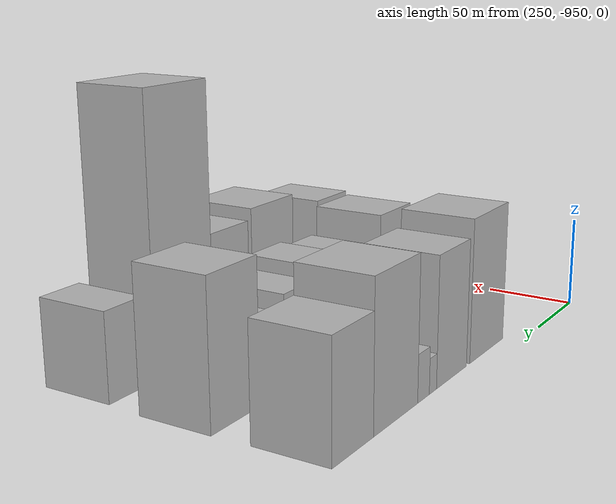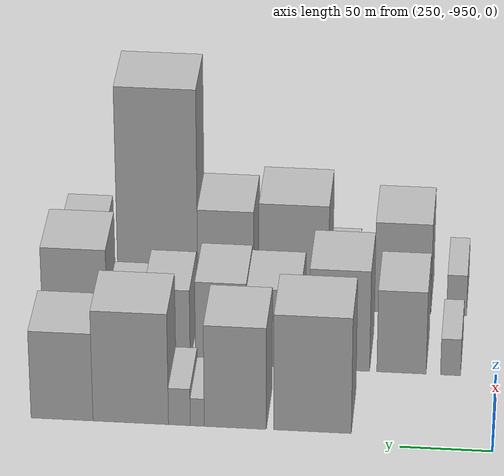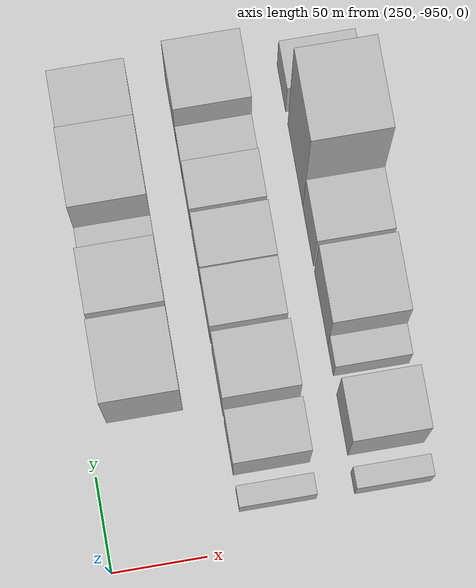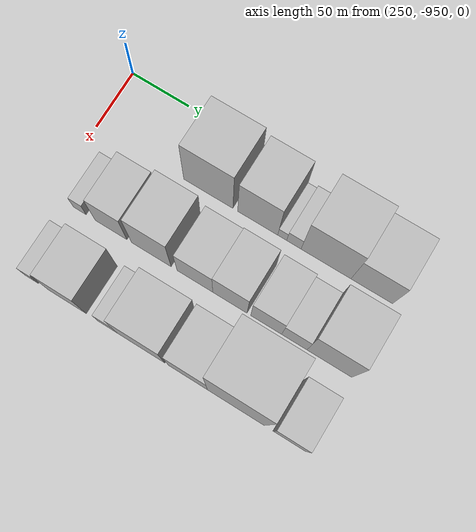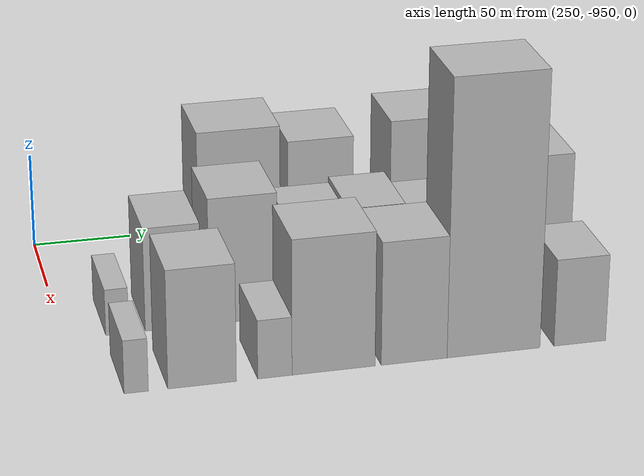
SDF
<sdf version="1.6">
 <world name="default">
  <model name="building_163">
   <static>1</static>
   <pose>280.0000 -852.0050 0 0.000000 0.000000 0.000000</pose>
   <link name="link">
    <pose>0 0 37.50 0 0 0</pose>
    <collision name="collision"><geometry><box><size>40.0000 42.2267 75.0000</size></box></geometry></collision>
    <visual name="visual">
     <cast_shadows>0</cast_shadows>
     <geometry><box><size>40.0000 42.2267 75.0000</size></box></geometry>
     <material>
      <script>
       <uri>model://HANNAS_wall/materials/scripts</uri>
       <uri>model://HANNAS_wall/materials/textures</uri>
       <name>vrc/HANNAS_wall</name>
      </script>
     </material>
    </visual>
   </link>
  </model>
  <model name="building_164">
   <static>1</static>
   <pose>280.0000 -809.9561 0 0.000000 0.000000 0.000000</pose>
   <link name="link">
    <pose>0 0 33.00 0 0 0</pose>
    <collision name="collision"><geometry><box><size>40.0000 33.8712 66.0000</size></box></geometry></collision>
    <visual name="visual">
     <cast_shadows>0</cast_shadows>
     <geometry><box><size>40.0000 33.8712 66.0000</size></box></geometry>
     <material>
      <script>
       <uri>model://HANNAS_wall/materials/scripts</uri>
       <uri>model://HANNAS_wall/materials/textures</uri>
       <name>vrc/HANNAS_wall</name>
      </script>
     </material>
    </visual>
   </link>
  </model>
  <model name="building_165">
   <static>1</static>
   <pose>280.0000 -789.2105 0 0.000000 0.000000 0.000000</pose>
   <link name="link">
    <pose>0 0 9.00 0 0 0</pose>
    <collision name="collision"><geometry><box><size>40.0000 7.6199 18.0000</size></box></geometry></collision>
    <visual name="visual">
     <cast_shadows>0</cast_shadows>
     <geometry><box><size>40.0000 7.6199 18.0000</size></box></geometry>
     <material>
      <script>
       <uri>model://HANNAS_wall/materials/scripts</uri>
       <uri>model://HANNAS_wall/materials/textures</uri>
       <name>vrc/HANNAS_wall</name>
      </script>
     </material>
    </visual>
   </link>
  </model>
  <model name="building_166">
   <static>1</static>
   <pose>280.0000 -779.4388 0 0.000000 0.000000 0.000000</pose>
   <link name="link">
    <pose>0 0 12.00 0 0 0</pose>
    <collision name="collision"><geometry><box><size>40.0000 11.9234 24.0000</size></box></geometry></collision>
    <visual name="visual">
     <cast_shadows>0</cast_shadows>
     <geometry><box><size>40.0000 11.9234 24.0000</size></box></geometry>
     <material>
      <script>
       <uri>model://HANNAS_wall/materials/scripts</uri>
       <uri>model://HANNAS_wall/materials/textures</uri>
       <name>vrc/HANNAS_wall</name>
      </script>
     </material>
    </visual>
   </link>
  </model>
  <model name="building_167">
   <static>1</static>
   <pose>280.0000 -752.8096 0 0.000000 0.000000 0.000000</pose>
   <link name="link">
    <pose>0 0 36.00 0 0 0</pose>
    <collision name="collision"><geometry><box><size>40.0000 41.3351 72.0000</size></box></geometry></collision>
    <visual name="visual">
     <cast_shadows>0</cast_shadows>
     <geometry><box><size>40.0000 41.3351 72.0000</size></box></geometry>
     <material>
      <script>
       <uri>model://HANNAS_wall/materials/scripts</uri>
       <uri>model://HANNAS_wall/materials/textures</uri>
       <name>vrc/HANNAS_wall</name>
      </script>
     </material>
    </visual>
   </link>
  </model>
  <model name="building_168">
   <static>1</static>
   <pose>280.0000 -715.1291 0 0.000000 0.000000 0.000000</pose>
   <link name="link">
    <pose>0 0 28.50 0 0 0</pose>
    <collision name="collision"><geometry><box><size>40.0000 34.0257 57.0000</size></box></geometry></collision>
    <visual name="visual">
     <cast_shadows>0</cast_shadows>
     <geometry><box><size>40.0000 34.0257 57.0000</size></box></geometry>
     <material>
      <script>
       <uri>model://HANNAS_wall/materials/scripts</uri>
       <uri>model://HANNAS_wall/materials/textures</uri>
       <name>vrc/HANNAS_wall</name>
      </script>
     </material>
    </visual>
   </link>
  </model>
  <model name="building_218">
   <static>1</static>
   <pose>340.0000 -924.4273 0 0.000000 0.000000 0.000000</pose>
   <link name="link">
    <pose>0 0 12.00 0 0 0</pose>
    <collision name="collision"><geometry><box><size>40.0000 11.1454 24.0000</size></box></geometry></collision>
    <visual name="visual">
     <cast_shadows>0</cast_shadows>
     <geometry><box><size>40.0000 11.1454 24.0000</size></box></geometry>
     <material>
      <script>
       <uri>model://HANNAS_wall/materials/scripts</uri>
       <uri>model://HANNAS_wall/materials/textures</uri>
       <name>vrc/HANNAS_wall</name>
      </script>
     </material>
    </visual>
   </link>
  </model>
  <model name="building_219">
   <static>1</static>
   <pose>340.0000 -897.1703 0 0.000000 0.000000 0.000000</pose>
   <link name="link">
    <pose>0 0 27.00 0 0 0</pose>
    <collision name="collision"><geometry><box><size>40.0000 27.3688 54.0000</size></box></geometry></collision>
    <visual name="visual">
     <cast_shadows>0</cast_shadows>
     <geometry><box><size>40.0000 27.3688 54.0000</size></box></geometry>
     <material>
      <script>
       <uri>model://HANNAS_wall/materials/scripts</uri>
       <uri>model://HANNAS_wall/materials/textures</uri>
       <name>vrc/HANNAS_wall</name>
      </script>
     </material>
    </visual>
   </link>
  </model>
  <model name="building_220">
   <static>1</static>
   <pose>340.0000 -862.6536 0 0.000000 0.000000 0.000000</pose>
   <link name="link">
    <pose>0 0 33.00 0 0 0</pose>
    <collision name="collision"><geometry><box><size>40.0000 33.6646 66.0000</size></box></geometry></collision>
    <visual name="visual">
     <cast_shadows>0</cast_shadows>
     <geometry><box><size>40.0000 33.6646 66.0000</size></box></geometry>
     <material>
      <script>
       <uri>model://HANNAS_wall/materials/scripts</uri>
       <uri>model://HANNAS_wall/materials/textures</uri>
       <name>vrc/HANNAS_wall</name>
      </script>
     </material>
    </visual>
   </link>
  </model>
  <model name="building_221">
   <static>1</static>
   <pose>340.0000 -825.8177 0 0.000000 0.000000 0.000000</pose>
   <link name="link">
    <pose>0 0 25.50 0 0 0</pose>
    <collision name="collision"><geometry><box><size>40.0000 30.0071 51.0000</size></box></geometry></collision>
    <visual name="visual">
     <cast_shadows>0</cast_shadows>
     <geometry><box><size>40.0000 30.0071 51.0000</size></box></geometry>
     <material>
      <script>
       <uri>model://HANNAS_wall/materials/scripts</uri>
       <uri>model://HANNAS_wall/materials/textures</uri>
       <name>vrc/HANNAS_wall</name>
      </script>
     </material>
    </visual>
   </link>
  </model>
  <model name="building_222">
   <static>1</static>
   <pose>340.0000 -796.5518 0 0.000000 0.000000 0.000000</pose>
   <link name="link">
    <pose>0 0 27.00 0 0 0</pose>
    <collision name="collision"><geometry><box><size>40.0000 28.5247 54.0000</size></box></geometry></collision>
    <visual name="visual">
     <cast_shadows>0</cast_shadows>
     <geometry><box><size>40.0000 28.5247 54.0000</size></box></geometry>
     <material>
      <script>
       <uri>model://HANNAS_wall/materials/scripts</uri>
       <uri>model://HANNAS_wall/materials/textures</uri>
       <name>vrc/HANNAS_wall</name>
      </script>
     </material>
    </visual>
   </link>
  </model>
  <model name="building_223">
   <static>1</static>
   <pose>340.0000 -766.5772 0 0.000000 0.000000 0.000000</pose>
   <link name="link">
    <pose>0 0 24.00 0 0 0</pose>
    <collision name="collision"><geometry><box><size>40.0000 25.4247 48.0000</size></box></geometry></collision>
    <visual name="visual">
     <cast_shadows>0</cast_shadows>
     <geometry><box><size>40.0000 25.4247 48.0000</size></box></geometry>
     <material>
      <script>
       <uri>model://HANNAS_wall/materials/scripts</uri>
       <uri>model://HANNAS_wall/materials/textures</uri>
       <name>vrc/HANNAS_wall</name>
      </script>
     </material>
    </visual>
   </link>
  </model>
  <model name="building_224">
   <static>1</static>
   <pose>340.0000 -743.5439 0 0.000000 0.000000 0.000000</pose>
   <link name="link">
    <pose>0 0 19.50 0 0 0</pose>
    <collision name="collision"><geometry><box><size>40.0000 20.6418 39.0000</size></box></geometry></collision>
    <visual name="visual">
     <cast_shadows>0</cast_shadows>
     <geometry><box><size>40.0000 20.6418 39.0000</size></box></geometry>
     <material>
      <script>
       <uri>model://HANNAS_wall/materials/scripts</uri>
       <uri>model://HANNAS_wall/materials/textures</uri>
       <name>vrc/HANNAS_wall</name>
      </script>
     </material>
    </visual>
   </link>
  </model>
  <model name="building_225">
   <static>1</static>
   <pose>340.0000 -715.1271 0 0.000000 0.000000 0.000000</pose>
   <link name="link">
    <pose>0 0 36.00 0 0 0</pose>
    <collision name="collision"><geometry><box><size>40.0000 36.1919 72.0000</size></box></geometry></collision>
    <visual name="visual">
     <cast_shadows>0</cast_shadows>
     <geometry><box><size>40.0000 36.1919 72.0000</size></box></geometry>
     <material>
      <script>
       <uri>model://HANNAS_wall/materials/scripts</uri>
       <uri>model://HANNAS_wall/materials/textures</uri>
       <name>vrc/HANNAS_wall</name>
      </script>
     </material>
    </visual>
   </link>
  </model>
  <model name="building_273">
   <static>1</static>
   <pose>400.0000 -925.3662 0 0.000000 0.000000 0.000000</pose>
   <link name="link">
    <pose>0 0 13.50 0 0 0</pose>
    <collision name="collision"><geometry><box><size>40.0000 11.2677 27.0000</size></box></geometry></collision>
    <visual name="visual">
     <cast_shadows>0</cast_shadows>
     <geometry><box><size>40.0000 11.2677 27.0000</size></box></geometry>
     <material>
      <script>
       <uri>model://HANNAS_wall/materials/scripts</uri>
       <uri>model://HANNAS_wall/materials/textures</uri>
       <name>vrc/HANNAS_wall</name>
      </script>
     </material>
    </visual>
   </link>
  </model>
  <model name="building_274">
   <static>1</static>
   <pose>400.0000 -894.6875 0 0.000000 0.000000 0.000000</pose>
   <link name="link">
    <pose>0 0 30.00 0 0 0</pose>
    <collision name="collision"><geometry><box><size>40.0000 32.0897 60.0000</size></box></geometry></collision>
    <visual name="visual">
     <cast_shadows>0</cast_shadows>
     <geometry><box><size>40.0000 32.0897 60.0000</size></box></geometry>
     <material>
      <script>
       <uri>model://HANNAS_wall/materials/scripts</uri>
       <uri>model://HANNAS_wall/materials/textures</uri>
       <name>vrc/HANNAS_wall</name>
      </script>
     </material>
    </visual>
   </link>
  </model>
  <model name="building_275">
   <static>1</static>
   <pose>400.0000 -860.5113 0 0.000000 0.000000 0.000000</pose>
   <link name="link">
    <pose>0 0 15.00 0 0 0</pose>
    <collision name="collision"><geometry><box><size>40.0000 16.2627 30.0000</size></box></geometry></collision>
    <visual name="visual">
     <cast_shadows>0</cast_shadows>
     <geometry><box><size>40.0000 16.2627 30.0000</size></box></geometry>
     <material>
      <script>
       <uri>model://HANNAS_wall/materials/scripts</uri>
       <uri>model://HANNAS_wall/materials/textures</uri>
       <name>vrc/HANNAS_wall</name>
      </script>
     </material>
    </visual>
   </link>
  </model>
  <model name="building_276">
   <static>1</static>
   <pose>400.0000 -832.5133 0 0.000000 0.000000 0.000000</pose>
   <link name="link">
    <pose>0 0 34.50 0 0 0</pose>
    <collision name="collision"><geometry><box><size>40.0000 39.7332 69.0000</size></box></geometry></collision>
    <visual name="visual">
     <cast_shadows>0</cast_shadows>
     <geometry><box><size>40.0000 39.7332 69.0000</size></box></geometry>
     <material>
      <script>
       <uri>model://HANNAS_wall/materials/scripts</uri>
       <uri>model://HANNAS_wall/materials/textures</uri>
       <name>vrc/HANNAS_wall</name>
      </script>
     </material>
    </visual>
   </link>
  </model>
  <model name="building_277">
   <static>1</static>
   <pose>400.0000 -793.6750 0 0.000000 0.000000 0.000000</pose>
   <link name="link">
    <pose>0 0 31.50 0 0 0</pose>
    <collision name="collision"><geometry><box><size>40.0000 31.9435 63.0000</size></box></geometry></collision>
    <visual name="visual">
     <cast_shadows>0</cast_shadows>
     <geometry><box><size>40.0000 31.9435 63.0000</size></box></geometry>
     <material>
      <script>
       <uri>model://HANNAS_wall/materials/scripts</uri>
       <uri>model://HANNAS_wall/materials/textures</uri>
       <name>vrc/HANNAS_wall</name>
      </script>
     </material>
    </visual>
   </link>
  </model>
  <model name="building_278">
   <static>1</static>
   <pose>400.0000 -754.8330 0 0.000000 0.000000 0.000000</pose>
   <link name="link">
    <pose>0 0 70.50 0 0 0</pose>
    <collision name="collision"><geometry><box><size>40.0000 45.7405 141.0000</size></box></geometry></collision>
    <visual name="visual">
     <cast_shadows>0</cast_shadows>
     <geometry><box><size>40.0000 45.7405 141.0000</size></box></geometry>
     <material>
      <script>
       <uri>model://HANNAS_wall/materials/scripts</uri>
       <uri>model://HANNAS_wall/materials/textures</uri>
       <name>vrc/HANNAS_wall</name>
      </script>
     </material>
    </visual>
   </link>
  </model>
  <model name="building_279">
   <static>1</static>
   <pose>400.0000 -712.0625 0 0.000000 0.000000 0.000000</pose>
   <link name="link">
    <pose>0 0 22.50 0 0 0</pose>
    <collision name="collision"><geometry><box><size>40.0000 25.8006 45.0000</size></box></geometry></collision>
    <visual name="visual">
     <cast_shadows>0</cast_shadows>
     <geometry><box><size>40.0000 25.8006 45.0000</size></box></geometry>
     <material>
      <script>
       <uri>model://HANNAS_wall/materials/scripts</uri>
       <uri>model://HANNAS_wall/materials/textures</uri>
       <name>vrc/HANNAS_wall</name>
      </script>
     </material>
    </visual>
   </link>
  </model>
 </world>
</sdf>
